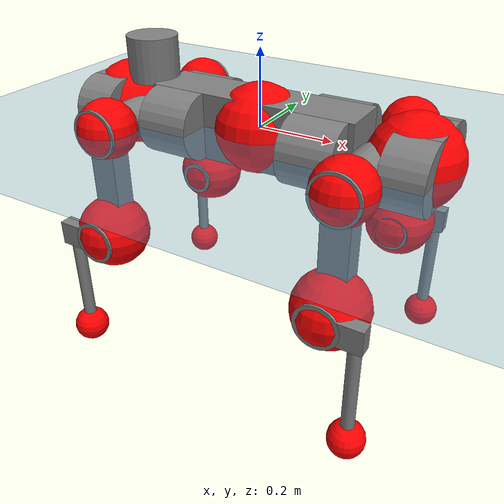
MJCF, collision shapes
<mujoco model="anymal_c">
  <compiler angle="radian" assetdir="assets" balanceinertia="true" inertiafromgeom="false"/>

  <option timestep="0.005" density="1.2" viscosity="2e-05"/>

  <size nkey="1"/>

  <visual>
    <quality shadowsize="8192"/>
    <map shadowclip="0.5"/>
  </visual>

  <default>
    <default class="/">
      <material specular="0" shininess="0.25"/>
      <geom contype="0" conaffinity="0" group="1" solref="-1000 -80"/>
      <site size="0.01 0.005 0.005" group="5"/>
      <general forcelimited="true" forcerange="-80 80" biastype="affine" gainprm="80" biasprm="0 -80 -2"/>
      <default class="anymal_c">
        <joint armature="0.01" damping="0.01" frictionloss="0.1"/>
        <default class="visual">
          <geom type="mesh" group="2"/>
          <default class="visual_zflip"/>
        </default>
        <default class="collision">
          <geom type="cylinder" group="3"/>
          <default class="foot">
            <geom size="0.03 0 0" type="sphere" condim="6" priority="1" friction="0.8 0.02 0.01" solimp="0.015 1 0.03"/>
          </default>
        </default>
      </default>
      <default class="reward_collision_sphere">
        <geom group="5" rgba="1 0 0 1"/>
      </default>
    </default>
  </default>

  <asset>
    <texture type="skybox" colorspace="auto" name="//unnamed_texture_0" builtin="gradient" rgb1="0.95 0.95 0.95" rgb2="0.95 0.95 0.95" width="100" height="600"/>
    <texture type="2d" colorspace="auto" name="texplane" builtin="checker" rgb1="0.345 0.575 0.748" rgb2="0.345 0.575 0.748" markrgb="1 1 1" width="512" height="512"/>
    <texture type="2d" colorspace="linear" name="base" file="base.png"/>
    <texture type="2d" colorspace="linear" name="top_shell" file="top_shell.png"/>
    <texture type="2d" colorspace="linear" name="bottom_shell" file="bottom_shell.png"/>
    <texture type="2d" colorspace="linear" name="remote" file="remote.png"/>
    <texture type="2d" colorspace="linear" name="hatch" file="hatch.png"/>
    <texture type="2d" colorspace="linear" name="handle" file="handle.png"/>
    <texture type="2d" colorspace="linear" name="face" file="face.png"/>
    <texture type="2d" colorspace="linear" name="battery" file="battery.png"/>
    <texture type="2d" colorspace="linear" name="lidar_cage" file="lidar_cage.png"/>
    <texture type="2d" colorspace="linear" name="depth_camera" file="depth_camera.png"/>
    <texture type="2d" colorspace="linear" name="wide_angle_camera" file="wide_angle_camera.png"/>
    <texture type="2d" colorspace="linear" name="lidar" file="lidar.png"/>
    <texture type="2d" colorspace="linear" name="drive" file="drive.png"/>
    <texture type="2d" colorspace="linear" name="hip_l" file="hip_l.png"/>
    <texture type="2d" colorspace="linear" name="shank_l" file="shank_l.png"/>
    <texture type="2d" colorspace="linear" name="foot" file="foot.png"/>
    <texture type="2d" colorspace="linear" name="thigh" file="thigh.png"/>
    <texture type="2d" colorspace="linear" name="shank_r" file="shank_r.png"/>
    <texture type="2d" colorspace="linear" name="hip_r" file="hip_r.png"/>
    <material name="MatPlane" class="/" texture="texplane" texuniform="true" texrepeat="2 2" specular="0.9" shininess="0.5"/>
    <material name="black_plastic" class="/" rgba="0.007 0.007 0.007 1"/>
    <material name="green" class="/" rgba="0.052 0.178 0.033 1"/>
    <material name="red" class="/" rgba="0.178 0.006 0.005 1"/>
    <material name="yellow" class="/" rgba="0.178 0.119 0.006 1"/>
    <material name="lwl" class="/" rgba="0.8 0.8 0.8 1"/>
    <material name="base" class="/" texture="base"/>
    <material name="top_shell" class="/" texture="top_shell"/>
    <material name="bottom_shell" class="/" texture="bottom_shell"/>
    <material name="hip_l" class="/" texture="hip_l"/>
    <material name="thigh" class="/" texture="thigh"/>
    <material name="shank_l" class="/" texture="shank_l"/>
    <material name="foot" class="/" texture="foot"/>
    <material name="hip_r" class="/" texture="hip_r"/>
    <material name="shank" class="/" texture="shank_r"/>
    <material name="hatch" class="/" texture="hatch"/>
    <material name="remote" class="/" texture="remote"/>
    <material name="handle" class="/" texture="handle"/>
    <material name="face" class="/" texture="face"/>
    <material name="depth_camera" class="/" texture="depth_camera"/>
    <material name="wide_angle_camera" class="/" texture="wide_angle_camera"/>
    <material name="battery" class="/" texture="battery"/>
    <material name="lidar_cage" class="/" texture="lidar_cage"/>
    <material name="lidar" class="/" texture="lidar"/>
    <material name="drive" class="/" texture="drive"/>
    <mesh name="base_0" class="/" file="base_0.obj"/>
    <mesh name="base_1" class="/" file="base_1.obj"/>
    <mesh name="base_2" class="/" file="base_2.obj"/>
    <mesh name="base_3" class="/" file="base_3.obj"/>
    <mesh name="base_4" class="/" file="base_4.obj"/>
    <mesh name="base_5" class="/" file="base_5.obj"/>
    <mesh name="top_shell" class="/" file="top_shell.obj"/>
    <mesh name="bottom_shell" class="/" file="bottom_shell.obj"/>
    <mesh name="remote" class="/" file="remote.obj"/>
    <mesh name="handle" class="/" file="handle.obj"/>
    <mesh name="face" class="/" file="face.obj"/>
    <mesh name="wide_angle_camera" class="/" file="wide_angle_camera.obj"/>
    <mesh name="depth_camera" class="/" file="depth_camera.obj"/>
    <mesh name="battery" class="/" file="battery.obj"/>
    <mesh name="lidar_cage" class="/" file="lidar_cage.obj"/>
    <mesh name="lidar" class="/" file="lidar.obj"/>
    <mesh name="drive" class="/" file="drive.obj"/>
    <mesh name="hip_l" class="/" file="hip_l.obj"/>
    <mesh name="thigh" class="/" file="thigh.obj"/>
    <mesh name="shank_l" class="/" file="shank_l.obj"/>
    <mesh name="foot" class="/" file="foot.obj"/>
    <mesh name="hip_r" class="/" file="hip_r.obj"/>
    <mesh name="hatch" class="/" file="hatch.obj"/>
    <mesh name="shank_r" class="/" file="shank_r.obj"/>
  </asset>

  <worldbody>
    <geom name="floor" class="/" size="100 100 0.125" type="plane" group="0" material="MatPlane"/>
    <light name="toplight_shadow" class="/" pos="0 0 5" dir="0.0990148 0.0990148 -0.990148" type="directional" ambient="0.04 0.04 0.04" diffuse="0.55 0.55 0.55" specular="0.12 0.12 0.12"/>
    <light name="toplight_fill" class="/" pos="0 0 5" dir="0.0990148 0.0990148 -0.990148" type="directional" castshadow="false" ambient="0.04 0.04 0.04" diffuse="0.3 0.3 0.3" specular="0.08 0.08 0.08"/>
    <body name="trunk" childclass="anymal_c" pos="0.00020196 -0.000141055 -0.00283642" quat="1 -3.71964e-06 4.95856e-05 7.19689e-05">
      <inertial pos="0.00133551 0.00201905 0.0524275" quat="0.500423 0.499893 0.499657 0.500027" mass="16.52" diaginertia="0.375589 0.558999 0.222151"/>
      <joint name="//unnamed_joint_0" type="free" armature="0" damping="0" frictionloss="0"/>
      <geom name="//unnamed_geom_1" class="visual" material="green" mesh="base_0"/>
      <geom name="//unnamed_geom_2" class="visual" material="yellow" mesh="base_1"/>
      <geom name="//unnamed_geom_3" class="visual" material="red" mesh="base_2"/>
      <geom name="//unnamed_geom_4" class="visual" material="black_plastic" mesh="base_3"/>
      <geom name="//unnamed_geom_5" class="visual" material="lwl" mesh="base_4"/>
      <geom name="//unnamed_geom_6" class="visual" material="base" mesh="base_5"/>
      <geom name="trunk_1" class="collision" size="0.279922 0.0675673 0.0868722" type="box"/>
      <geom name="trunk_2" class="collision" size="0.0868722 0.0699804" pos="0.195545 0.0690897 0" quat="0.707107 0 0.707107 0"/>
      <geom name="trunk_3" class="collision" size="0.0868722 0.0699804" pos="-0.195545 0.0690897 0" quat="0.707107 0 0.707107 0"/>
      <geom name="trunk_4" class="collision" size="0.0868722 0.0699804" pos="0.195545 -0.0690897 0" quat="0.707107 0 0.707107 0"/>
      <geom name="trunk_5" class="collision" size="0.0868722 0.0699804" pos="-0.195545 -0.0690897 0" quat="0.707107 0 0.707107 0"/>
      <geom name="//unnamed_geom_12" class="visual" material="top_shell" mesh="top_shell"/>
      <geom name="//unnamed_geom_13" class="visual" material="bottom_shell" mesh="bottom_shell"/>
      <geom name="//unnamed_geom_14" class="visual" material="remote" mesh="remote"/>
      <geom name="//unnamed_geom_15" class="visual" material="handle" mesh="handle"/>
      <geom name="//unnamed_geom_16" class="visual" pos="0.37266 0 0" quat="1 0 0 0" material="face" mesh="face"/>
      <geom name="trunk_6" class="collision" size="0.0530886 0.0675673 0.0868722" pos="0.422108 0 0" type="box"/>
      <geom name="//unnamed_geom_18" class="collision" size="0.0868722 0.0530886" pos="0.422108 0.0690897 0" quat="0.707107 0 0.707107 0"/>
      <geom name="//unnamed_geom_19" class="collision" size="0.0868722 0.0530886" pos="0.422108 -0.0690897 0" quat="0.707107 0 0.707107 0"/>
      <geom name="//unnamed_geom_20" class="visual" pos="0.415055 0 -0.0303236" quat="0.965926 0 0.258819 0" material="depth_camera" mesh="depth_camera"/>
      <geom name="//unnamed_geom_21" class="visual" pos="0.461217 0 0.015115" material="wide_angle_camera" mesh="wide_angle_camera"/>
      <geom name="//unnamed_geom_22" class="visual_zflip" pos="-0.37266 0 0" quat="0 0 0 1" material="face" mesh="face"/>
      <geom name="trunk_7" class="collision" size="0.0530886 0.0675673 0.0868722" pos="-0.422108 0 0" quat="0 0 0 1" type="box"/>
      <geom name="//unnamed_geom_24" class="collision" size="0.0868722 0.0530886" pos="-0.422108 -0.0690897 0" quat="0 -0.707107 0 0.707107"/>
      <geom name="//unnamed_geom_25" class="collision" size="0.0868722 0.0530886" pos="-0.422108 0.0690897 0" quat="0 -0.707107 0 0.707107"/>
      <geom name="//unnamed_geom_26" class="visual" pos="-0.415055 0 -0.0303236" quat="0 -0.258819 0 0.965926" material="depth_camera" mesh="depth_camera"/>
      <geom name="//unnamed_geom_27" class="visual_zflip" pos="-0.461217 0 0.015115" quat="0 0 0 1" material="wide_angle_camera" mesh="wide_angle_camera"/>
      <geom name="//unnamed_geom_28" class="visual" material="battery" mesh="battery"/>
      <geom name="//unnamed_geom_29" class="visual" pos="0 0.0766242 0.0284906" quat="0.683013 -0.183013 0.183013 0.683013" material="depth_camera" mesh="depth_camera"/>
      <geom name="//unnamed_geom_30" class="visual" pos="0 -0.0766242 0.0284906" quat="0.683013 0.183013 0.183013 -0.683013" material="depth_camera" mesh="depth_camera"/>
      <geom name="//unnamed_geom_31" class="visual" pos="-0.327257 0 0.074212" quat="1 0 0 0" material="lidar_cage" mesh="lidar_cage"/>
      <geom name="trunk_8" class="collision" size="0.0675673 0.0579148" pos="-0.327257 0 0.134793"/>
      <geom name="//unnamed_geom_33" class="visual" pos="-0.327257 3.45478e-05 0.143577" quat="0.707107 0 0 -0.707107" material="lidar" mesh="lidar"/>
      <geom name="//unnamed_geom_34" class="visual" pos="0.269628 0.102656 -3.91432e-10" quat="0.258819 0.965926 0 0" material="drive" mesh="drive"/>
      <geom name="//unnamed_geom_35" class="visual" pos="0.269628 -0.102656 3.91432e-10" quat="0.258819 -0.965926 0 0" material="drive" mesh="drive"/>
      <geom name="//unnamed_geom_36" class="visual" pos="-0.269628 0.102656 3.91432e-10" quat="0 0 0.965926 -0.258819" material="drive" mesh="drive"/>
      <geom name="//unnamed_geom_37" class="visual" pos="-0.269628 -0.102656 -3.91432e-10" quat="0 0 -0.965926 -0.258819" material="drive" mesh="drive"/>
      <geom name="//unnamed_geom_38" class="visual" pos="0.104291 0 0.0737071" quat="1 0 0 0" material="hatch" mesh="hatch"/>
      <geom name="//unnamed_geom_39" class="reward_collision_sphere" size="0.11583"/>
      <geom name="//unnamed_geom_40" class="reward_collision_sphere" size="0.11583" pos="0.404577 0 0"/>
      <geom name="//unnamed_geom_41" class="reward_collision_sphere" size="0.11583" pos="-0.404577 0 0"/>
      <site name="imu" pos="0.229234 -0.00416169 0.0535723" size="0.00965247"/>
      <camera name="track" pos="0 -1.97399 0" quat="0.707107 0.707107 0 0" mode="trackcom"/>
      <camera name="ego_camera" pos="0.404577 0 -0.0403875" quat="-0.5 -0.5 0.5 0.5"/>
      <body name="LF_HIP" pos="0.269923 0.100787 -0.00172501" quat="0.258903 0.965903 -0.000117415 -0.000126405">
        <inertial pos="0.0484387 -0.0148514 -0.0105754" quat="-0.125127 0.711284 -0.131949 0.678976" mass="2.47527" diaginertia="0.00341931 0.00443662 0.00353836"/>
        <joint name="LF_HAA" pos="0 0 0" axis="0.999994 0.00277152 0.00219322" range="-0.755011 0.48341" armature="0.0110228" damping="0.0224107" frictionloss="0.0836532"/>
        <geom name="//unnamed_geom_42" class="visual" pos="0 -2.30262e-05 3.78203e-06" quat="0.258819 -0.965926 0 0" material="hip_l" mesh="hip_l"/>
        <geom name="//unnamed_geom_43" class="visual" pos="0.0538536 -0.066421 -0.038516" quat="0.183013 -0.683013 0.683013 0.183013" material="drive" mesh="drive"/>
        <geom name="//unnamed_geom_44" class="collision" size="0.0482624 0.0675673" pos="0.0538536 -0.0118043 -0.00697189" quat="-0.353553 -0.612372 0.612372 -0.353553"/>
        <body name="LF_THIGH" pos="0.0544108 -0.0719367 -0.0406671" quat="0.183145 -0.682991 0.683003 0.183">
          <inertial pos="0.0279147 -0.000422348 -0.25044" quat="0.993422 -0.00510309 -0.0790308 0.0827066" mass="2.6801" diaginertia="0.0176835 0.0280968 0.00416959"/>
          <joint name="LF_HFE" pos="0 0 0" axis="0.999964 -0.00184 -0.00833413" range="-3.19946 3.17498" armature="0.00977923" damping="0.00984429" frictionloss="0.0914895"/>
          <geom name="//unnamed_geom_45" class="visual" pos="-0.00174959 -2.75694e-06 0" quat="0.707107 0 0 -0.707107" material="thigh" mesh="thigh"/>
          <geom name="//unnamed_geom_46" class="collision" size="0.0627411 0.0386099" pos="0.0359624 0 0" quat="0.5 0.5 -0.5 -0.5"/>
          <geom name="//unnamed_geom_47" class="collision" size="0.0361968 0.0289574 0.136403" pos="0.0269718 0 -0.142683" quat="0.707107 0 0 -0.707107" type="box"/>
          <geom name="//unnamed_geom_48" class="visual" pos="0.0901756 0 -0.287761" quat="1 0 0 0" material="drive" mesh="drive"/>
          <geom name="//unnamed_geom_49" class="collision" size="0.0482624 0.0675673" pos="0.0272415 0 -0.287761" quat="0.707107 0 0.707107 0"/>
          <geom name="//unnamed_geom_50" class="reward_collision_sphere" size="0.0772198" pos="0.0224765 0 0"/>
          <body name="LF_SHANK" pos="0.0890558 0.00245474 -0.285261" quat="0.999999 5.79468e-05 0.0011189 -7.88201e-05">
            <inertial pos="0.00572471 -0.0605256 -0.0815202" quat="0.992995 -0.115235 -0.000912915 -0.0260799" mass="0.502264" diaginertia="0.00596135 0.00856264 0.00112069"/>
            <joint name="LF_KFE" pos="0 0 0" axis="0.999998 0.00199871 -0.000752766" stiffness="0.000197516" range="-3.16067 3.15289" armature="0.0088763" damping="0.0230444" frictionloss="0.0828126"/>
            <geom name="//unnamed_geom_51" class="visual" pos="-0.000570502 -0.00304195 0" quat="0.707107 0 0 -0.707107" material="shank_l" mesh="shank_l"/>
            <geom name="LF_kfe_act" class="collision" size="0.0579148 0.0193049" pos="0.0179812 0 0" quat="0.5 0.5 -0.5 -0.5"/>
            <geom name="//unnamed_geom_53" class="collision" size="0.0555007 0.0325771 0.0183397" pos="0.0179812 -0.0567512 0" quat="0.5 0.5 -0.5 -0.5" type="box"/>
            <geom name="//unnamed_geom_54" class="visual" pos="0.0117329 -0.0877865 -0.341244" quat="0.382683 0 0 -0.92388" material="foot" mesh="foot"/>
            <geom name="LF_calf" class="collision" size="0.0168918 0.136343" pos="0.0117327 -0.0868062 -0.170622" quat="0.707107 0 0 -0.707107"/>
            <geom name="LF_foot" class="foot" size="0.0313309" pos="0.0117327 -0.0868062 -0.318526" quat="0.707107 0 0 -0.707107"/>
            <geom name="//unnamed_geom_57" class="reward_collision_sphere" size="0.0965247" pos="-0.044953 0 0"/>
            <geom name="//unnamed_geom_58" class="reward_collision_sphere" size="0.0482624" pos="0.0117327 -0.0868062 -0.318526"/>
            <site name="LF_foot" class="foot" pos="0.0117327 -0.0868062 -0.318526" quat="0.707107 0 0 -0.707107" size="0.00965247"/>
          </body>
        </body>
      </body>
      <body name="RF_HIP" pos="0.271459 -0.105895 0.000308472" quat="0.258727 -0.965949 0.00106921 -0.000936934">
        <inertial pos="0.050602 0.0146939 -0.0077234" quat="0.136429 0.679758 0.125893 0.709554" mass="2.44629" diaginertia="0.00337548 0.00434668 0.00344807"/>
        <joint name="RF_HAA" pos="0 0 0" axis="1 -0.000340427 -0.000759061" range="-0.437153 0.67658" armature="0.00954289" damping="0.012008" frictionloss="0.0832282"/>
        <geom name="//unnamed_geom_59" class="visual" pos="0 2.3026e-05 3.78202e-06" quat="0.258819 0.965926 0 0" material="hip_r" mesh="hip_r"/>
        <geom name="//unnamed_geom_60" class="visual" pos="0.0538536 0.066421 -0.038516" quat="0.183013 0.683013 0.683013 -0.183013" material="drive" mesh="drive"/>
        <geom name="//unnamed_geom_61" class="collision" size="0.0482624 0.0675673" pos="0.0538536 0.0118043 -0.00697189" quat="-0.353553 0.612372 0.612372 0.353553"/>
        <body name="RF_THIGH" pos="0.0555815 0.0743195 -0.043737" quat="0.182731 0.682715 0.683244 -0.183542">
          <inertial pos="0.027728 0.000907836 -0.247821" quat="0.992693 -0.00392342 -0.0823435 0.0881207" mass="2.73305" diaginertia="0.0175941 0.0278548 0.00444198"/>
          <joint name="RF_HFE" pos="0 0 0" axis="0.999966 -0.00707448 0.00426519" stiffness="0.00631615" range="-3.11477 3.09468" armature="0.00972477" damping="0" frictionloss="0.0970634"/>
          <geom name="//unnamed_geom_62" class="visual" pos="-0.00174959 -2.75694e-06 0" quat="0.707107 0 0 -0.707107" material="thigh" mesh="thigh"/>
          <geom name="//unnamed_geom_63" class="collision" size="0.0627411 0.0386099" pos="0.0359624 0 0" quat="0.5 0.5 0.5 0.5"/>
          <geom name="//unnamed_geom_64" class="collision" size="0.0361968 0.0289574 0.136403" pos="0.0269718 0 -0.142683" quat="0.707107 0 0 0.707107" type="box"/>
          <geom name="//unnamed_geom_65" class="visual" pos="0.0901756 0 -0.287761" quat="1 0 0 0" material="drive" mesh="drive"/>
          <geom name="//unnamed_geom_66" class="collision" size="0.0482624 0.0675673" pos="0.0272415 0 -0.287761" quat="0.707107 0 0.707107 0"/>
          <geom name="//unnamed_geom_67" class="reward_collision_sphere" size="0.0772198" pos="0.0224765 0 0"/>
          <body name="RF_SHANK" pos="0.0925649 7.71288e-06 -0.285503" quat="1 -0.000174435 0.000119129 0.000280459">
            <inertial pos="0.00380257 0.0606264 -0.0796721" quat="0.993243 0.113305 -0.00165311 0.0250534" mass="0.523983" diaginertia="0.00619489 0.00869483 0.00117952"/>
            <joint name="RF_KFE" pos="0 0 0" axis="0.999987 0.00467744 -0.00199265" range="-3.12156 3.08397" armature="0.00941874" damping="0.00442487" frictionloss="0.0900493"/>
            <geom name="//unnamed_geom_68" class="visual" pos="-0.000570499 0.00304194 0" quat="0.707107 0 0 0.707107" material="shank" mesh="shank_r"/>
            <geom name="RF_kfe_act" class="collision" size="0.0579148 0.0193049" pos="0.0179812 0 0" quat="0.5 0.5 0.5 0.5"/>
            <geom name="//unnamed_geom_70" class="collision" size="0.0555007 0.0325771 0.0183397" pos="0.0179812 0.0567512 0" quat="0.5 0.5 0.5 0.5" type="box"/>
            <geom name="//unnamed_geom_71" class="visual" pos="0.0117326 0.0877865 -0.341244" quat="0.382683 0 0 0.92388" material="foot" mesh="foot"/>
            <geom name="RF_calf" class="collision" size="0.0168918 0.136343" pos="0.0117327 0.0868062 -0.170622" quat="0.707107 0 0 0.707107"/>
            <geom name="RF_foot" class="foot" size="0.0278474" pos="0.0117327 0.0868062 -0.318526" quat="0.707107 0 0 0.707107"/>
            <geom name="//unnamed_geom_74" class="reward_collision_sphere" size="0.0965247" pos="-0.044953 0 0"/>
            <geom name="//unnamed_geom_75" class="reward_collision_sphere" size="0.0482624" pos="0.0117327 0.0868062 -0.318526"/>
            <site name="RF_foot" class="foot" pos="0.0117327 0.0868062 -0.318526" quat="0.707107 0 0 0.707107" size="0.00965247"/>
          </body>
        </body>
      </body>
      <body name="LH_HIP" pos="-0.26851 0.105322 -0.000213305" quat="2.40119e-05 0.000441627 0.965971 -0.258649">
        <inertial pos="0.0488808 0.0123178 -0.0092115" quat="0.137045 0.682116 0.128951 0.706618" mass="2.46474" diaginertia="0.00348783 0.00477047 0.00337152"/>
        <joint name="LH_HAA" pos="0 0 0" axis="0.999915 -0.0110858 -0.00682149" range="-0.498274 0.680854" armature="0.00951053" damping="0" frictionloss="0.107849"/>
        <geom name="//unnamed_geom_76" class="visual" pos="0 2.3026e-05 3.78202e-06" quat="-0.258819 -0.965926 0 0" material="hip_r" mesh="hip_r"/>
        <geom name="//unnamed_geom_77" class="visual" pos="0.0538536 0.066421 -0.038516" quat="0.183013 0.683013 0.683013 -0.183013" material="drive" mesh="drive"/>
        <geom name="//unnamed_geom_78" class="collision" size="0.0482624 0.0675673" pos="0.0538536 0.0118043 -0.00697189" quat="-0.353553 0.612372 0.612372 0.353553"/>
        <body name="LH_THIGH" pos="0.0530317 0.0687005 -0.0429222" quat="0.183355 0.683283 0.68302 -0.18163">
          <inertial pos="0.0267718 -0.00292201 -0.247958" quat="0.993592 -0.00300826 -0.0747651 0.0847171" mass="2.73852" diaginertia="0.018397 0.0278496 0.00463249"/>
          <joint name="LH_HFE" pos="0 0 0" axis="1 0.000171115 -0.000534133" stiffness="0.00588373" range="-3.1356 3.14762" armature="0.00948071" damping="0.0106307" frictionloss="0.0953045"/>
          <geom name="//unnamed_geom_79" class="visual" pos="-0.00174959 -2.75694e-06 0" quat="0.707107 0 0 -0.707107" material="thigh" mesh="thigh"/>
          <geom name="//unnamed_geom_80" class="collision" size="0.0627411 0.0386099" pos="0.0359624 0 0" quat="0.5 0.5 -0.5 -0.5"/>
          <geom name="//unnamed_geom_81" class="collision" size="0.0361968 0.0289574 0.136403" pos="0.0269718 0 -0.142683" quat="0.707107 0 0 -0.707107" type="box"/>
          <geom name="//unnamed_geom_82" class="visual" pos="0.0901756 0 -0.287761" quat="1 0 0 0" material="drive" mesh="drive"/>
          <geom name="//unnamed_geom_83" class="collision" size="0.0482624 0.0675673" pos="0.0272415 0 -0.287761" quat="0.707107 0 0.707107 0"/>
          <geom name="//unnamed_geom_84" class="reward_collision_sphere" size="0.0772198" pos="0.0224765 0 0"/>
          <body name="LH_SHANK" pos="0.0926604 -0.000243631 -0.28826" quat="0.999999 0.000584436 0.000574741 -0.000949234">
            <inertial pos="0.00772091 0.0592471 -0.0842397" quat="0.992894 0.116155 -0.00118143 0.0258391" mass="0.519385" diaginertia="0.00598622 0.00901225 0.00120476"/>
            <joint name="LH_KFE" pos="0 0 0" axis="0.999978 -0.00215068 0.00619942" range="-3.13891 3.12072" armature="0.00944008" damping="0.0220122" frictionloss="0.107017"/>
            <geom name="//unnamed_geom_85" class="visual" pos="-0.000570499 0.00304194 0" quat="-0.707107 0 0 -0.707107" material="shank" mesh="shank_r"/>
            <geom name="LH_kfe_act" class="collision" size="0.0579148 0.0193049" pos="0.0179812 0 0" quat="0.5 0.5 -0.5 -0.5"/>
            <geom name="//unnamed_geom_87" class="collision" size="0.0555007 0.0325771 0.0183397" pos="0.0179812 0.0567512 0" quat="0.5 0.5 -0.5 -0.5" type="box"/>
            <geom name="//unnamed_geom_88" class="visual" pos="0.0117326 0.0877865 -0.341244" quat="-0.382683 0 0 -0.92388" material="foot" mesh="foot"/>
            <geom name="LH_calf" class="collision" size="0.0168918 0.136343" pos="0.0117327 0.0868062 -0.170622" quat="0.707107 0 0 -0.707107"/>
            <geom name="LH_foot" class="foot" size="0.0277591" pos="0.0117327 0.0868062 -0.318526" quat="0.707107 0 0 -0.707107"/>
            <geom name="//unnamed_geom_91" class="reward_collision_sphere" size="0.0965247" pos="-0.044953 0 0"/>
            <geom name="//unnamed_geom_92" class="reward_collision_sphere" size="0.0482624" pos="0.0117327 0.0868062 -0.318526"/>
            <site name="LH_foot" class="foot" pos="0.0117327 0.0868062 -0.318526" quat="0.707107 0 0 -0.707107" size="0.00965247"/>
          </body>
        </body>
      </body>
      <body name="RH_HIP" pos="-0.270137 -0.0996496 -0.0010041" quat="0.000314945 0.000752897 -0.966242 -0.257637">
        <inertial pos="0.0506952 -0.0130173 -0.0105812" quat="-0.123186 0.708055 -0.139552 0.681182" mass="2.40357" diaginertia="0.00343341 0.00432283 0.00334522"/>
        <joint name="RH_HAA" pos="0 0 0" axis="0.999969 -0.00745013 0.0025474" range="-0.774342 0.496481" armature="0.0083399" damping="0.0107711" frictionloss="0.109701"/>
        <geom name="//unnamed_geom_93" class="visual" pos="0 -2.30262e-05 3.78203e-06" quat="-0.258819 0.965926 0 0" material="hip_l" mesh="hip_l"/>
        <geom name="//unnamed_geom_94" class="visual" pos="0.0538536 -0.066421 -0.038516" quat="-0.183013 0.683013 -0.683013 -0.183013" material="drive" mesh="drive"/>
        <geom name="//unnamed_geom_95" class="collision" size="0.0482624 0.0675673" pos="0.0538536 -0.0118043 -0.00697189" quat="0.353553 0.612372 -0.612372 0.353553"/>
        <body name="RH_THIGH" pos="0.0546393 -0.0710142 -0.0437179" quat="-0.183069 0.682961 -0.683028 -0.183093">
          <inertial pos="0.0278639 0.00123041 -0.245303" quat="0.993863 0.00647312 -0.0794329 0.0767148" mass="2.716" diaginertia="0.0176428 0.0275247 0.00437873"/>
          <joint name="RH_HFE" pos="0 0 0" axis="0.999914 -0.00974378 -0.00882132" stiffness="0.0108942" range="-3.10599 3.09777" armature="0.0103694" damping="0.0093898" frictionloss="0.100293"/>
          <geom name="//unnamed_geom_96" class="visual" pos="-0.00174959 -2.75694e-06 0" quat="0.707107 0 0 -0.707107" material="thigh" mesh="thigh"/>
          <geom name="//unnamed_geom_97" class="collision" size="0.0627411 0.0386099" pos="0.0359624 0 0" quat="0.5 0.5 0.5 0.5"/>
          <geom name="//unnamed_geom_98" class="collision" size="0.0361968 0.0289574 0.136403" pos="0.0269718 0 -0.142683" quat="0.707107 0 0 0.707107" type="box"/>
          <geom name="//unnamed_geom_99" class="visual" pos="0.0901756 0 -0.287761" quat="1 0 0 0" material="drive" mesh="drive"/>
          <geom name="//unnamed_geom_100" class="collision" size="0.0482624 0.0675673" pos="0.0272415 0 -0.287761" quat="0.707107 0 0.707107 0"/>
          <geom name="//unnamed_geom_101" class="reward_collision_sphere" size="0.0772198" pos="0.0224765 0 0"/>
          <body name="RH_SHANK" pos="0.0880079 -0.00250589 -0.286721" quat="0.999999 0.000571059 0.00127545 -0.000541543">
            <inertial pos="0.00727891 -0.060843 -0.081563" quat="0.993256 -0.11124 0.0025088 -0.0325862" mass="0.499253" diaginertia="0.0057599 0.00833424 0.00115836"/>
            <joint name="RH_KFE" pos="0 0 0" axis="0.999969 -0.00776181 -0.000892406" stiffness="0.00706871" range="-3.07618 3.18522" armature="0.00989499" damping="0.008906" frictionloss="0.0921491"/>
            <geom name="//unnamed_geom_102" class="visual" pos="-0.000570502 -0.00304195 0" quat="0.707107 0 0 -0.707107" material="shank_l" mesh="shank_l"/>
            <geom name="RH_kfe_act" class="collision" size="0.0579148 0.0193049" pos="0.0179812 0 0" quat="0.5 0.5 0.5 0.5"/>
            <geom name="//unnamed_geom_104" class="collision" size="0.0555007 0.0325771 0.0183397" pos="0.0179812 -0.0567512 0" quat="0.5 0.5 0.5 0.5" type="box"/>
            <geom name="//unnamed_geom_105" class="visual" pos="0.0117329 -0.0877865 -0.341244" quat="0.382683 0 0 -0.92388" material="foot" mesh="foot"/>
            <geom name="RH_calf" class="collision" size="0.0168918 0.136343" pos="0.0117327 -0.0868062 -0.170622" quat="0.707107 0 0 0.707107"/>
            <geom name="RH_foot" class="foot" size="0.0273268" pos="0.0117327 -0.0868062 -0.318526" quat="0.707107 0 0 0.707107"/>
            <geom name="//unnamed_geom_108" class="reward_collision_sphere" size="0.0965247" pos="-0.044953 0 0"/>
            <geom name="//unnamed_geom_109" class="reward_collision_sphere" size="0.0482624" pos="0.0117327 -0.0868062 -0.318526"/>
            <site name="RH_foot" class="foot" pos="0.0117327 -0.0868062 -0.318526" quat="0.707107 0 0 0.707107" size="0.00965247"/>
          </body>
        </body>
      </body>
    </body>
  </worldbody>

  <contact>
    <pair class="/" geom1="floor" geom2="LF_foot" name="//unnamed_contact_0"/>
    <pair class="/" geom1="floor" geom2="RF_foot" name="//unnamed_contact_1"/>
    <pair class="/" geom1="floor" geom2="LH_foot" name="//unnamed_contact_2"/>
    <pair class="/" geom1="floor" geom2="RH_foot" name="//unnamed_contact_3"/>
  </contact>

  <actuator>
    <general name="LF_HAA" class="/" joint="LF_HAA" forcerange="-70.9532 70.9532" gainprm="82.1953" biasprm="0 -82.1953 -2.04514"/>
    <general name="LF_HFE" class="/" joint="LF_HFE" forcerange="-73.1905 73.1905" gainprm="82.1953" biasprm="0 -82.1953 -2.04514"/>
    <general name="LF_KFE" class="/" joint="LF_KFE" forcerange="-77.8565 77.8565" gainprm="82.1953" biasprm="0 -82.1953 -2.04514"/>
    <general name="RF_HAA" class="/" joint="RF_HAA" forcerange="-76.8637 76.8637" gainprm="82.1953" biasprm="0 -82.1953 -2.04514"/>
    <general name="RF_HFE" class="/" joint="RF_HFE" forcerange="-83.5182 83.5182" gainprm="82.1953" biasprm="0 -82.1953 -2.04514"/>
    <general name="RF_KFE" class="/" joint="RF_KFE" forcerange="-71.7258 71.7258" gainprm="82.1953" biasprm="0 -82.1953 -2.04514"/>
    <general name="LH_HAA" class="/" joint="LH_HAA" forcerange="-85.7824 85.7824" gainprm="82.1953" biasprm="0 -82.1953 -2.04514"/>
    <general name="LH_HFE" class="/" joint="LH_HFE" forcerange="-77.0917 77.0917" gainprm="82.1953" biasprm="0 -82.1953 -2.04514"/>
    <general name="LH_KFE" class="/" joint="LH_KFE" forcerange="-71.6262 71.6262" gainprm="82.1953" biasprm="0 -82.1953 -2.04514"/>
    <general name="RH_HAA" class="/" joint="RH_HAA" forcerange="-72.9445 72.9445" gainprm="82.1953" biasprm="0 -82.1953 -2.04514"/>
    <general name="RH_HFE" class="/" joint="RH_HFE" forcerange="-79.7821 79.7821" gainprm="82.1953" biasprm="0 -82.1953 -2.04514"/>
    <general name="RH_KFE" class="/" joint="RH_KFE" forcerange="-78.303 78.303" gainprm="82.1953" biasprm="0 -82.1953 -2.04514"/>
  </actuator>

  <sensor>
    <gyro site="imu" name="imu_angular_velocity"/>
    <velocimeter site="imu" name="imu_linear_velocity"/>
    <framelinvel objtype="site" objname="LF_foot" name="LF_foot_global_linear_velocity"/>
    <framelinvel objtype="site" objname="RF_foot" name="RF_foot_global_linear_velocity"/>
    <framelinvel objtype="site" objname="LH_foot" name="LH_foot_global_linear_velocity"/>
    <framelinvel objtype="site" objname="RH_foot" name="RH_foot_global_linear_velocity"/>
  </sensor>

  <keyframe>
    <key name="home" qpos="0 0 0.55 1 0 0 0 0 0.4 -0.8 0 -0.4 0.8 0 -0.4 0.8 0 0.4 -0.8"/>
  </keyframe>
</mujoco>
